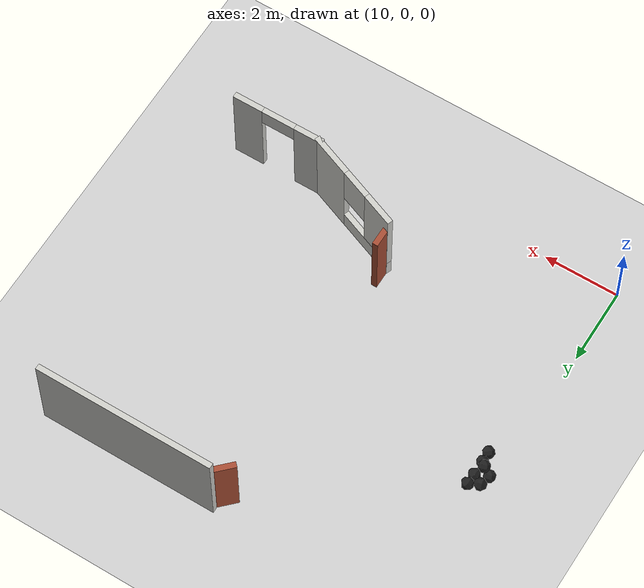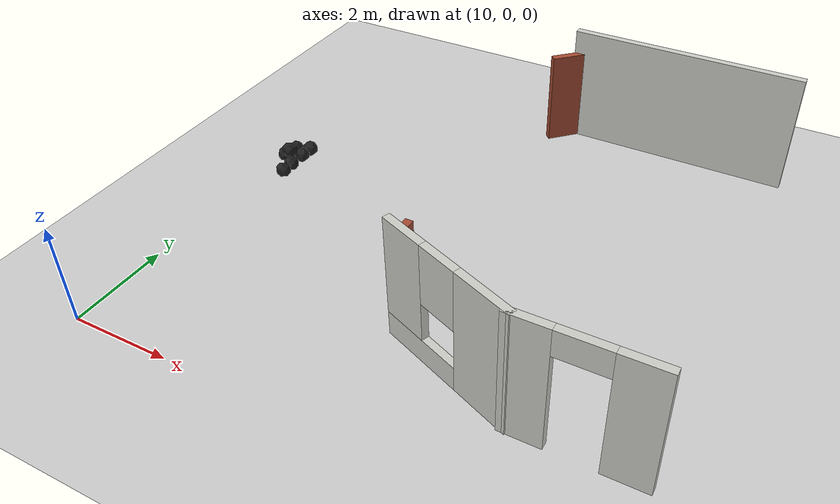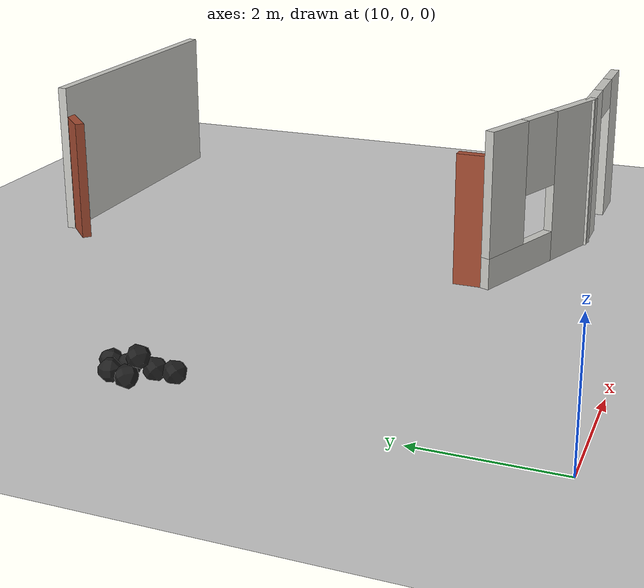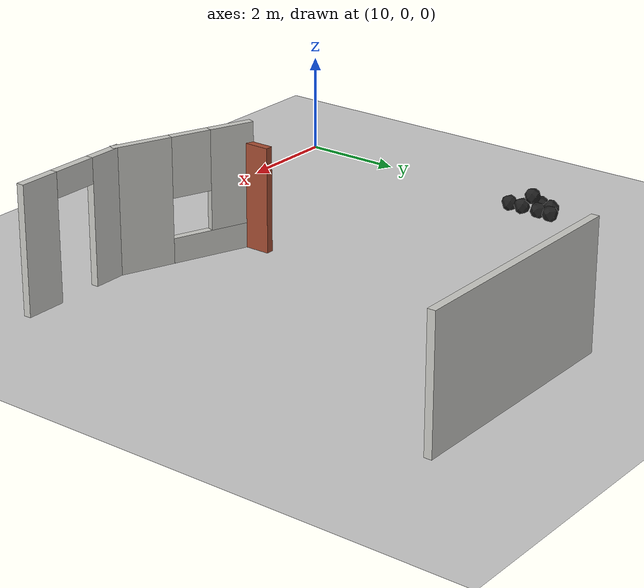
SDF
<sdf version="1.7">
 <world name="default">
  <model name="ground_plane">
   <static>1</static>
   <link name="link">
    <collision name="collision">
     <geometry><plane><normal>0 0 1</normal><size>100 100</size></plane></geometry>
     <surface><friction><ode><mu>100</mu><mu2>50</mu2></ode></friction></surface>
    </collision>
    <visual name="visual">
     <cast_shadows>0</cast_shadows>
     <geometry><plane><normal>0 0 1</normal><size>100 100</size></plane></geometry>
     <material>
      <script><uri>file://media/materials/scripts/gazebo.material</uri><name>Gazebo/Grey</name></script>
     </material>
    </visual>
   </link>
  </model>
  <model name="haoduomiantiaa_37">
   <link name="link_0">
    <inertial>
     <mass>0.2</mass>
     <inertia>
      <ixx>0.166667</ixx>
      <ixy>0</ixy>
      <ixz>0</ixz>
      <iyy>0.166667</iyy>
      <iyz>0</iyz>
      <izz>0.166667</izz>
     </inertia>
    </inertial>
    <visual name="visual">
     <geometry>
      <mesh>
       <uri>/home/lihaoyang/catkin_ws/src/pudong_gazebo/world/stl/haoduomianti.stl</uri>
       <scale>1 1 1</scale>
      </mesh>
     </geometry>
     <material>
      <lighting>1</lighting>
      <script><uri>file://media/materials/scripts/gazebo.material</uri><name>Gazebo/Black</name></script>
      <shader type="pixel"><normal_map>__default__</normal_map></shader>
      <ambient>0.3 0.3 0.3 1</ambient>
      <diffuse>0.7 0.7 0.7 1</diffuse>
      <specular>0.01 0.01 0.01 1</specular>
      <emissive>0 0 0 1</emissive>
     </material>
    </visual>
    <collision name="collision">
     <geometry>
      <mesh>
       <uri>/home/lihaoyang/catkin_ws/src/pudong_gazebo/world/stl/haoduomianti.stl</uri>
       <scale>1 1 1</scale>
      </mesh>
     </geometry>
     <surface>
      <friction>
       <ode><mu>1</mu><mu2>1</mu2><fdir1>0 0 0</fdir1><slip1>0</slip1><slip2>0</slip2></ode>
       <torsional>
        <coefficient>1</coefficient>
        <patch_radius>0</patch_radius>
        <surface_radius>0</surface_radius>
        <use_patch_radius>1</use_patch_radius>
        <ode><slip>0</slip></ode>
       </torsional>
      </friction>
      <bounce><restitution_coefficient>0</restitution_coefficient><threshold>1e+06</threshold></bounce>
      <contact>
       <collide_without_contact>0</collide_without_contact>
       <collide_without_contact_bitmask>1</collide_without_contact_bitmask>
       <collide_bitmask>1</collide_bitmask>
       <ode>
        <soft_cfm>0</soft_cfm>
        <soft_erp>0.2</soft_erp>
        <kp>1e+13</kp>
        <kd>1</kd>
        <max_vel>0.01</max_vel>
        <min_depth>0</min_depth>
       </ode>
       <bullet>
        <split_impulse>1</split_impulse>
        <split_impulse_penetration_threshold>-0.01</split_impulse_penetration_threshold>
        <soft_cfm>0</soft_cfm>
        <soft_erp>0.2</soft_erp>
        <kp>1e+13</kp>
        <kd>1</kd>
       </bullet>
      </contact>
     </surface>
    </collision>
   </link>
   <static>0</static>
   <pose>10.3598 6.24938 -0.003676 1.19196 -1.54256 0.613856</pose>
  </model>
  <model name="haoduomiantiaa_64">
   <link name="link_0">
    <inertial>
     <mass>0.2</mass>
     <inertia>
      <ixx>0.166667</ixx>
      <ixy>0</ixy>
      <ixz>0</ixz>
      <iyy>0.166667</iyy>
      <iyz>0</iyz>
      <izz>0.166667</izz>
     </inertia>
    </inertial>
    <visual name="visual">
     <geometry>
      <mesh>
       <uri>/home/lihaoyang/catkin_ws/src/pudong_gazebo/world/stl/haoduomianti.stl</uri>
       <scale>1 1 1</scale>
      </mesh>
     </geometry>
     <material>
      <lighting>1</lighting>
      <script><uri>file://media/materials/scripts/gazebo.material</uri><name>Gazebo/Black</name></script>
      <shader type="pixel"><normal_map>__default__</normal_map></shader>
      <ambient>0.3 0.3 0.3 1</ambient>
      <diffuse>0.7 0.7 0.7 1</diffuse>
      <specular>0.01 0.01 0.01 1</specular>
      <emissive>0 0 0 1</emissive>
     </material>
    </visual>
    <collision name="collision">
     <geometry>
      <mesh>
       <uri>/home/lihaoyang/catkin_ws/src/pudong_gazebo/world/stl/haoduomianti.stl</uri>
       <scale>1 1 1</scale>
      </mesh>
     </geometry>
     <surface>
      <friction>
       <ode><mu>1</mu><mu2>1</mu2><fdir1>0 0 0</fdir1><slip1>0</slip1><slip2>0</slip2></ode>
       <torsional>
        <coefficient>1</coefficient>
        <patch_radius>0</patch_radius>
        <surface_radius>0</surface_radius>
        <use_patch_radius>1</use_patch_radius>
        <ode><slip>0</slip></ode>
       </torsional>
      </friction>
      <bounce><restitution_coefficient>0</restitution_coefficient><threshold>1e+06</threshold></bounce>
      <contact>
       <collide_without_contact>0</collide_without_contact>
       <collide_without_contact_bitmask>1</collide_without_contact_bitmask>
       <collide_bitmask>1</collide_bitmask>
       <ode>
        <soft_cfm>0</soft_cfm>
        <soft_erp>0.2</soft_erp>
        <kp>1e+13</kp>
        <kd>1</kd>
        <max_vel>0.01</max_vel>
        <min_depth>0</min_depth>
       </ode>
       <bullet>
        <split_impulse>1</split_impulse>
        <split_impulse_penetration_threshold>-0.01</split_impulse_penetration_threshold>
        <soft_cfm>0</soft_cfm>
        <soft_erp>0.2</soft_erp>
        <kp>1e+13</kp>
        <kd>1</kd>
       </bullet>
      </contact>
     </surface>
    </collision>
   </link>
   <static>0</static>
   <pose>10.5009 5.92885 -0.115308 0.780623 -0.617791 2.08092</pose>
  </model>
  <model name="haoduomiantiaa_67">
   <link name="link_0">
    <inertial>
     <mass>0.2</mass>
     <inertia>
      <ixx>0.166667</ixx>
      <ixy>0</ixy>
      <ixz>0</ixz>
      <iyy>0.166667</iyy>
      <iyz>0</iyz>
      <izz>0.166667</izz>
     </inertia>
    </inertial>
    <visual name="visual">
     <geometry>
      <mesh>
       <uri>/home/lihaoyang/catkin_ws/src/pudong_gazebo/world/stl/haoduomianti.stl</uri>
       <scale>1 1 1</scale>
      </mesh>
     </geometry>
     <material>
      <lighting>1</lighting>
      <script><uri>file://media/materials/scripts/gazebo.material</uri><name>Gazebo/Black</name></script>
      <shader type="pixel"><normal_map>__default__</normal_map></shader>
      <ambient>0.3 0.3 0.3 1</ambient>
      <diffuse>0.7 0.7 0.7 1</diffuse>
      <specular>0.01 0.01 0.01 1</specular>
      <emissive>0 0 0 1</emissive>
     </material>
    </visual>
    <collision name="collision">
     <geometry>
      <mesh>
       <uri>/home/lihaoyang/catkin_ws/src/pudong_gazebo/world/stl/haoduomianti.stl</uri>
       <scale>1 1 1</scale>
      </mesh>
     </geometry>
     <surface>
      <friction>
       <ode><mu>1</mu><mu2>1</mu2><fdir1>0 0 0</fdir1><slip1>0</slip1><slip2>0</slip2></ode>
       <torsional>
        <coefficient>1</coefficient>
        <patch_radius>0</patch_radius>
        <surface_radius>0</surface_radius>
        <use_patch_radius>1</use_patch_radius>
        <ode><slip>0</slip></ode>
       </torsional>
      </friction>
      <bounce><restitution_coefficient>0</restitution_coefficient><threshold>1e+06</threshold></bounce>
      <contact>
       <collide_without_contact>0</collide_without_contact>
       <collide_without_contact_bitmask>1</collide_without_contact_bitmask>
       <collide_bitmask>1</collide_bitmask>
       <ode>
        <soft_cfm>0</soft_cfm>
        <soft_erp>0.2</soft_erp>
        <kp>1e+13</kp>
        <kd>1</kd>
        <max_vel>0.01</max_vel>
        <min_depth>0</min_depth>
       </ode>
       <bullet>
        <split_impulse>1</split_impulse>
        <split_impulse_penetration_threshold>-0.01</split_impulse_penetration_threshold>
        <soft_cfm>0</soft_cfm>
        <soft_erp>0.2</soft_erp>
        <kp>1e+13</kp>
        <kd>1</kd>
       </bullet>
      </contact>
     </surface>
    </collision>
   </link>
   <static>0</static>
   <pose>10.174 5.78335 -0.115464 0.785509 -0.615489 -1.30792</pose>
  </model>
  <model name="haoduomiantiaa_71">
   <link name="link_0">
    <inertial>
     <mass>0.2</mass>
     <inertia>
      <ixx>0.166667</ixx>
      <ixy>0</ixy>
      <ixz>0</ixz>
      <iyy>0.166667</iyy>
      <iyz>0</iyz>
      <izz>0.166667</izz>
     </inertia>
    </inertial>
    <visual name="visual">
     <geometry>
      <mesh>
       <uri>/home/lihaoyang/catkin_ws/src/pudong_gazebo/world/stl/haoduomianti.stl</uri>
       <scale>1 1 1</scale>
      </mesh>
     </geometry>
     <material>
      <lighting>1</lighting>
      <script><uri>file://media/materials/scripts/gazebo.material</uri><name>Gazebo/Black</name></script>
      <shader type="pixel"><normal_map>__default__</normal_map></shader>
      <ambient>0.3 0.3 0.3 1</ambient>
      <diffuse>0.7 0.7 0.7 1</diffuse>
      <specular>0.01 0.01 0.01 1</specular>
      <emissive>0 0 0 1</emissive>
     </material>
    </visual>
    <collision name="collision">
     <geometry>
      <mesh>
       <uri>/home/lihaoyang/catkin_ws/src/pudong_gazebo/world/stl/haoduomianti.stl</uri>
       <scale>1 1 1</scale>
      </mesh>
     </geometry>
     <surface>
      <friction>
       <ode><mu>1</mu><mu2>1</mu2><fdir1>0 0 0</fdir1><slip1>0</slip1><slip2>0</slip2></ode>
       <torsional>
        <coefficient>1</coefficient>
        <patch_radius>0</patch_radius>
        <surface_radius>0</surface_radius>
        <use_patch_radius>1</use_patch_radius>
        <ode><slip>0</slip></ode>
       </torsional>
      </friction>
      <bounce><restitution_coefficient>0</restitution_coefficient><threshold>1e+06</threshold></bounce>
      <contact>
       <collide_without_contact>0</collide_without_contact>
       <collide_without_contact_bitmask>1</collide_without_contact_bitmask>
       <collide_bitmask>1</collide_bitmask>
       <ode>
        <soft_cfm>0</soft_cfm>
        <soft_erp>0.2</soft_erp>
        <kp>1e+13</kp>
        <kd>1</kd>
        <max_vel>0.01</max_vel>
        <min_depth>0</min_depth>
       </ode>
       <bullet>
        <split_impulse>1</split_impulse>
        <split_impulse_penetration_threshold>-0.01</split_impulse_penetration_threshold>
        <soft_cfm>0</soft_cfm>
        <soft_erp>0.2</soft_erp>
        <kp>1e+13</kp>
        <kd>1</kd>
       </bullet>
      </contact>
     </surface>
    </collision>
   </link>
   <static>0</static>
   <pose>10.4979 5.55039 -0.115492 0.785395 -0.615483 1.17926</pose>
  </model>
  <model name="haoduomiantiaa_77">
   <link name="link_0">
    <inertial>
     <mass>0.2</mass>
     <inertia>
      <ixx>0.166667</ixx>
      <ixy>0</ixy>
      <ixz>0</ixz>
      <iyy>0.166667</iyy>
      <iyz>0</iyz>
      <izz>0.166667</izz>
     </inertia>
    </inertial>
    <visual name="visual">
     <geometry>
      <mesh>
       <uri>/home/lihaoyang/catkin_ws/src/pudong_gazebo/world/stl/haoduomianti.stl</uri>
       <scale>1 1 1</scale>
      </mesh>
     </geometry>
     <material>
      <lighting>1</lighting>
      <script><uri>file://media/materials/scripts/gazebo.material</uri><name>Gazebo/Black</name></script>
      <shader type="pixel"><normal_map>__default__</normal_map></shader>
      <ambient>0.3 0.3 0.3 1</ambient>
      <diffuse>0.7 0.7 0.7 1</diffuse>
      <specular>0.01 0.01 0.01 1</specular>
      <emissive>0 0 0 1</emissive>
     </material>
    </visual>
    <collision name="collision">
     <geometry>
      <mesh>
       <uri>/home/lihaoyang/catkin_ws/src/pudong_gazebo/world/stl/haoduomianti.stl</uri>
       <scale>1 1 1</scale>
      </mesh>
     </geometry>
     <surface>
      <friction>
       <ode><mu>1</mu><mu2>1</mu2><fdir1>0 0 0</fdir1><slip1>0</slip1><slip2>0</slip2></ode>
       <torsional>
        <coefficient>1</coefficient>
        <patch_radius>0</patch_radius>
        <surface_radius>0</surface_radius>
        <use_patch_radius>1</use_patch_radius>
        <ode><slip>0</slip></ode>
       </torsional>
      </friction>
      <bounce><restitution_coefficient>0</restitution_coefficient><threshold>1e+06</threshold></bounce>
      <contact>
       <collide_without_contact>0</collide_without_contact>
       <collide_without_contact_bitmask>1</collide_without_contact_bitmask>
       <collide_bitmask>1</collide_bitmask>
       <ode>
        <soft_cfm>0</soft_cfm>
        <soft_erp>0.2</soft_erp>
        <kp>1e+13</kp>
        <kd>1</kd>
        <max_vel>0.01</max_vel>
        <min_depth>0</min_depth>
       </ode>
       <bullet>
        <split_impulse>1</split_impulse>
        <split_impulse_penetration_threshold>-0.01</split_impulse_penetration_threshold>
        <soft_cfm>0</soft_cfm>
        <soft_erp>0.2</soft_erp>
        <kp>1e+13</kp>
        <kd>1</kd>
       </bullet>
      </contact>
     </surface>
    </collision>
   </link>
   <static>0</static>
   <pose>10.5195 6.21236 -0.115409 0.785449 -0.615548 2.10413</pose>
  </model>
  <model name="haoduomiantiaa_82">
   <link name="link_0">
    <inertial>
     <mass>0.2</mass>
     <inertia>
      <ixx>0.166667</ixx>
      <ixy>0</ixy>
      <ixz>0</ixz>
      <iyy>0.166667</iyy>
      <iyz>0</iyz>
      <izz>0.166667</izz>
     </inertia>
    </inertial>
    <visual name="visual">
     <geometry>
      <mesh>
       <uri>/home/lihaoyang/catkin_ws/src/pudong_gazebo/world/stl/haoduomianti.stl</uri>
       <scale>1 1 1</scale>
      </mesh>
     </geometry>
     <material>
      <lighting>1</lighting>
      <script><uri>file://media/materials/scripts/gazebo.material</uri><name>Gazebo/Black</name></script>
      <shader type="pixel"><normal_map>__default__</normal_map></shader>
      <ambient>0.3 0.3 0.3 1</ambient>
      <diffuse>0.7 0.7 0.7 1</diffuse>
      <specular>0.01 0.01 0.01 1</specular>
      <emissive>0 0 0 1</emissive>
     </material>
    </visual>
    <collision name="collision">
     <geometry>
      <mesh>
       <uri>/home/lihaoyang/catkin_ws/src/pudong_gazebo/world/stl/haoduomianti.stl</uri>
       <scale>1 1 1</scale>
      </mesh>
     </geometry>
     <surface>
      <friction>
       <ode><mu>1</mu><mu2>1</mu2><fdir1>0 0 0</fdir1><slip1>0</slip1><slip2>0</slip2></ode>
       <torsional>
        <coefficient>1</coefficient>
        <patch_radius>0</patch_radius>
        <surface_radius>0</surface_radius>
        <use_patch_radius>1</use_patch_radius>
        <ode><slip>0</slip></ode>
       </torsional>
      </friction>
      <bounce><restitution_coefficient>0</restitution_coefficient><threshold>1e+06</threshold></bounce>
      <contact>
       <collide_without_contact>0</collide_without_contact>
       <collide_without_contact_bitmask>1</collide_without_contact_bitmask>
       <collide_bitmask>1</collide_bitmask>
       <ode>
        <soft_cfm>0</soft_cfm>
        <soft_erp>0.2</soft_erp>
        <kp>1e+13</kp>
        <kd>1</kd>
        <max_vel>0.01</max_vel>
        <min_depth>0</min_depth>
       </ode>
       <bullet>
        <split_impulse>1</split_impulse>
        <split_impulse_penetration_threshold>-0.01</split_impulse_penetration_threshold>
        <soft_cfm>0</soft_cfm>
        <soft_erp>0.2</soft_erp>
        <kp>1e+13</kp>
        <kd>1</kd>
       </bullet>
      </contact>
     </surface>
    </collision>
   </link>
   <static>0</static>
   <pose>10.3736 5.71908 0.092671 0.779768 -0.658453 0.943269</pose>
  </model>
  <model name="haoduomiantiaa_134">
   <link name="link_0">
    <inertial>
     <mass>0.2</mass>
     <inertia>
      <ixx>0.166667</ixx>
      <ixy>0</ixy>
      <ixz>0</ixz>
      <iyy>0.166667</iyy>
      <iyz>0</iyz>
      <izz>0.166667</izz>
     </inertia>
    </inertial>
    <visual name="visual">
     <geometry>
      <mesh>
       <uri>/home/lihaoyang/catkin_ws/src/pudong_gazebo/world/stl/haoduomianti.stl</uri>
       <scale>1 1 1</scale>
      </mesh>
     </geometry>
     <material>
      <lighting>1</lighting>
      <script><uri>file://media/materials/scripts/gazebo.material</uri><name>Gazebo/Black</name></script>
      <shader type="pixel"><normal_map>__default__</normal_map></shader>
      <ambient>0.3 0.3 0.3 1</ambient>
      <diffuse>0.7 0.7 0.7 1</diffuse>
      <specular>0.01 0.01 0.01 1</specular>
      <emissive>0 0 0 1</emissive>
     </material>
    </visual>
    <collision name="collision">
     <geometry>
      <mesh>
       <uri>/home/lihaoyang/catkin_ws/src/pudong_gazebo/world/stl/haoduomianti.stl</uri>
       <scale>1 1 1</scale>
      </mesh>
     </geometry>
     <surface>
      <friction>
       <ode><mu>1</mu><mu2>1</mu2><fdir1>0 0 0</fdir1><slip1>0</slip1><slip2>0</slip2></ode>
       <torsional>
        <coefficient>1</coefficient>
        <patch_radius>0</patch_radius>
        <surface_radius>0</surface_radius>
        <use_patch_radius>1</use_patch_radius>
        <ode><slip>0</slip></ode>
       </torsional>
      </friction>
      <bounce><restitution_coefficient>0</restitution_coefficient><threshold>1e+06</threshold></bounce>
      <contact>
       <collide_without_contact>0</collide_without_contact>
       <collide_without_contact_bitmask>1</collide_without_contact_bitmask>
       <collide_bitmask>1</collide_bitmask>
       <ode>
        <soft_cfm>0</soft_cfm>
        <soft_erp>0.2</soft_erp>
        <kp>1e+13</kp>
        <kd>1</kd>
        <max_vel>0.01</max_vel>
        <min_depth>0</min_depth>
       </ode>
       <bullet>
        <split_impulse>1</split_impulse>
        <split_impulse_penetration_threshold>-0.01</split_impulse_penetration_threshold>
        <soft_cfm>0</soft_cfm>
        <soft_erp>0.2</soft_erp>
        <kp>1e+13</kp>
        <kd>1</kd>
       </bullet>
      </contact>
     </surface>
    </collision>
   </link>
   <static>0</static>
   <pose>10.5017 5.2656 -0.115483 0.785493 -0.61552 1.17926</pose>
  </model>
  <model name="house">
   <link name="Wall_10">
    <pose>6.351 -3.13846 0 0 -0 2.76762</pose>
    <visual name="Wall_10_Visual_2">
     <pose>0.98795 0 1.5 0 -0 0</pose>
     <geometry><box><size>0.905886 0.15 2</size></box></geometry>
     <material>
      <script><uri>file://media/materials/scripts/gazebo.material</uri><name>Gazebo/CeilingTiled</name></script>
      <ambient>1 1 1 1</ambient>
      <shader type="pixel"/>
     </material>
     <meta><layer>0</layer></meta>
    </visual>
    <visual name="Wall_10_Visual_3">
     <pose>0.135006 0 1.9 0 -0 0</pose>
     <geometry><box><size>0.8 0.15 1.2</size></box></geometry>
     <material>
      <script><uri>file://media/materials/scripts/gazebo.material</uri><name>Gazebo/CeilingTiled</name></script>
      <ambient>1 1 1 1</ambient>
      <shader type="pixel"/>
     </material>
     <meta><layer>0</layer></meta>
    </visual>
    <visual name="Wall_10_Visual_1">
     <pose>0.58795 0 0.25 0 -0 0</pose>
     <geometry><box><size>1.70589 0.15 0.5</size></box></geometry>
     <material>
      <script><uri>file://media/materials/scripts/gazebo.material</uri><name>Gazebo/CeilingTiled</name></script>
      <ambient>1 1 1 1</ambient>
      <shader type="pixel"/>
     </material>
     <meta><layer>0</layer></meta>
    </visual>
    <visual name="Wall_10_Visual_0">
     <pose>-0.852943 0 1.25 0 -0 0</pose>
     <geometry><box><size>1.1759 0.15 2.5</size></box></geometry>
     <material>
      <script><uri>file://media/materials/scripts/gazebo.material</uri><name>Gazebo/CeilingTiled</name></script>
      <ambient>1 1 1 1</ambient>
      <shader type="pixel"/>
     </material>
     <meta><layer>0</layer></meta>
    </visual>
    <collision name="Wall_10_Collision_0">
     <pose>-0.852943 0 1.25 0 -0 0</pose>
     <geometry><box><size>1.1759 0.15 2.5</size></box></geometry>
     <surface>
      <friction>
       <ode><mu>1</mu><mu2>1</mu2><fdir1>0 0 0</fdir1><slip1>0</slip1><slip2>0</slip2></ode>
       <torsional>
        <coefficient>1</coefficient>
        <patch_radius>0</patch_radius>
        <surface_radius>0</surface_radius>
        <use_patch_radius>1</use_patch_radius>
        <ode><slip>0</slip></ode>
       </torsional>
      </friction>
      <bounce><restitution_coefficient>0</restitution_coefficient><threshold>1e+06</threshold></bounce>
      <contact>
       <collide_without_contact>0</collide_without_contact>
       <collide_without_contact_bitmask>1</collide_without_contact_bitmask>
       <collide_bitmask>1</collide_bitmask>
       <ode>
        <soft_cfm>0</soft_cfm>
        <soft_erp>0.2</soft_erp>
        <kp>1e+13</kp>
        <kd>1</kd>
        <max_vel>0.01</max_vel>
        <min_depth>0</min_depth>
       </ode>
       <bullet>
        <split_impulse>1</split_impulse>
        <split_impulse_penetration_threshold>-0.01</split_impulse_penetration_threshold>
        <soft_cfm>0</soft_cfm>
        <soft_erp>0.2</soft_erp>
        <kp>1e+13</kp>
        <kd>1</kd>
       </bullet>
      </contact>
     </surface>
    </collision>
    <collision name="Wall_10_Collision_1">
     <pose>0.58795 0 0.25 0 -0 0</pose>
     <geometry><box><size>1.70589 0.15 0.5</size></box></geometry>
     <surface>
      <friction>
       <ode><mu>1</mu><mu2>1</mu2><fdir1>0 0 0</fdir1><slip1>0</slip1><slip2>0</slip2></ode>
       <torsional>
        <coefficient>1</coefficient>
        <patch_radius>0</patch_radius>
        <surface_radius>0</surface_radius>
        <use_patch_radius>1</use_patch_radius>
        <ode><slip>0</slip></ode>
       </torsional>
      </friction>
      <bounce><restitution_coefficient>0</restitution_coefficient><threshold>1e+06</threshold></bounce>
      <contact>
       <collide_without_contact>0</collide_without_contact>
       <collide_without_contact_bitmask>1</collide_without_contact_bitmask>
       <collide_bitmask>1</collide_bitmask>
       <ode>
        <soft_cfm>0</soft_cfm>
        <soft_erp>0.2</soft_erp>
        <kp>1e+13</kp>
        <kd>1</kd>
        <max_vel>0.01</max_vel>
        <min_depth>0</min_depth>
       </ode>
       <bullet>
        <split_impulse>1</split_impulse>
        <split_impulse_penetration_threshold>-0.01</split_impulse_penetration_threshold>
        <soft_cfm>0</soft_cfm>
        <soft_erp>0.2</soft_erp>
        <kp>1e+13</kp>
        <kd>1</kd>
       </bullet>
      </contact>
     </surface>
    </collision>
    <collision name="Wall_10_Collision_2">
     <pose>0.98795 0 1.5 0 -0 0</pose>
     <geometry><box><size>0.905886 0.15 2</size></box></geometry>
     <surface>
      <friction>
       <ode><mu>1</mu><mu2>1</mu2><fdir1>0 0 0</fdir1><slip1>0</slip1><slip2>0</slip2></ode>
       <torsional>
        <coefficient>1</coefficient>
        <patch_radius>0</patch_radius>
        <surface_radius>0</surface_radius>
        <use_patch_radius>1</use_patch_radius>
        <ode><slip>0</slip></ode>
       </torsional>
      </friction>
      <bounce><restitution_coefficient>0</restitution_coefficient><threshold>1e+06</threshold></bounce>
      <contact>
       <collide_without_contact>0</collide_without_contact>
       <collide_without_contact_bitmask>1</collide_without_contact_bitmask>
       <collide_bitmask>1</collide_bitmask>
       <ode>
        <soft_cfm>0</soft_cfm>
        <soft_erp>0.2</soft_erp>
        <kp>1e+13</kp>
        <kd>1</kd>
        <max_vel>0.01</max_vel>
        <min_depth>0</min_depth>
       </ode>
       <bullet>
        <split_impulse>1</split_impulse>
        <split_impulse_penetration_threshold>-0.01</split_impulse_penetration_threshold>
        <soft_cfm>0</soft_cfm>
        <soft_erp>0.2</soft_erp>
        <kp>1e+13</kp>
        <kd>1</kd>
       </bullet>
      </contact>
     </surface>
    </collision>
    <collision name="Wall_10_Collision_3">
     <pose>0.135006 0 1.9 0 -0 0</pose>
     <geometry><box><size>0.8 0.15 1.2</size></box></geometry>
     <surface>
      <friction>
       <ode><mu>1</mu><mu2>1</mu2><fdir1>0 0 0</fdir1><slip1>0</slip1><slip2>0</slip2></ode>
       <torsional>
        <coefficient>1</coefficient>
        <patch_radius>0</patch_radius>
        <surface_radius>0</surface_radius>
        <use_patch_radius>1</use_patch_radius>
        <ode><slip>0</slip></ode>
       </torsional>
      </friction>
      <bounce><restitution_coefficient>0</restitution_coefficient><threshold>1e+06</threshold></bounce>
      <contact>
       <collide_without_contact>0</collide_without_contact>
       <collide_without_contact_bitmask>1</collide_without_contact_bitmask>
       <collide_bitmask>1</collide_bitmask>
       <ode>
        <soft_cfm>0</soft_cfm>
        <soft_erp>0.2</soft_erp>
        <kp>1e+13</kp>
        <kd>1</kd>
        <max_vel>0.01</max_vel>
        <min_depth>0</min_depth>
       </ode>
       <bullet>
        <split_impulse>1</split_impulse>
        <split_impulse_penetration_threshold>-0.01</split_impulse_penetration_threshold>
        <soft_cfm>0</soft_cfm>
        <soft_erp>0.2</soft_erp>
        <kp>1e+13</kp>
        <kd>1</kd>
       </bullet>
      </contact>
     </surface>
    </collision>
   </link>
   <link name="Wall_11">
    <pose>5.1147 -2.35573 0 0 -0 1.5708</pose>
    <inertial>
     <inertia><ixx>0</ixx><ixy>0</ixy><ixz>0</ixz><iyy>0</iyy><iyz>0</iyz><izz>0</izz></inertia>
     <mass>0</mass>
    </inertial>
    <visual name="Wall_11_Visual">
     <pose>0 0 1.05 0 -0 0</pose>
     <geometry><box><size>0.506266 0.15 2.1</size></box></geometry>
     <material>
      <script><uri>file://media/materials/scripts/gazebo.material</uri><name>Gazebo/Bricks</name></script>
      <ambient>1 1 1 1</ambient>
      <shader type="pixel"/>
     </material>
     <meta><layer>0</layer></meta>
    </visual>
    <collision name="Wall_11_Collision">
     <pose>0 0 1.05 0 -0 0</pose>
     <geometry><box><size>0.506266 0.15 2.1</size></box></geometry>
     <surface>
      <friction>
       <ode><mu>1</mu><mu2>1</mu2><fdir1>0 0 0</fdir1><slip1>0</slip1><slip2>0</slip2></ode>
       <torsional>
        <coefficient>1</coefficient>
        <patch_radius>0</patch_radius>
        <surface_radius>0</surface_radius>
        <use_patch_radius>1</use_patch_radius>
        <ode><slip>0</slip></ode>
       </torsional>
      </friction>
      <bounce><restitution_coefficient>0</restitution_coefficient><threshold>1e+06</threshold></bounce>
      <contact>
       <collide_without_contact>0</collide_without_contact>
       <collide_without_contact_bitmask>1</collide_without_contact_bitmask>
       <collide_bitmask>1</collide_bitmask>
       <ode>
        <soft_cfm>0</soft_cfm>
        <soft_erp>0.2</soft_erp>
        <kp>1e+13</kp>
        <kd>1</kd>
        <max_vel>0.01</max_vel>
        <min_depth>0</min_depth>
       </ode>
       <bullet>
        <split_impulse>1</split_impulse>
        <split_impulse_penetration_threshold>-0.01</split_impulse_penetration_threshold>
        <soft_cfm>0</soft_cfm>
        <soft_erp>0.2</soft_erp>
        <kp>1e+13</kp>
        <kd>1</kd>
       </bullet>
      </contact>
     </surface>
    </collision>
   </link>
   <link name="Wall_15">
    <pose>5.117 4.61078 0 0 -0 0.786576</pose>
    <visual name="Wall_15_Visual">
     <pose>0 0 1 0 -0 0</pose>
     <geometry><box><size>0.75 0.15 2</size></box></geometry>
     <material>
      <script><uri>file://media/materials/scripts/gazebo.material</uri><name>Gazebo/Bricks</name></script>
      <ambient>1 1 1 1</ambient>
      <shader type="pixel"/>
     </material>
     <meta><layer>0</layer></meta>
    </visual>
    <collision name="Wall_15_Collision">
     <pose>0 0 1 0 -0 0</pose>
     <geometry><box><size>0.75 0.15 2</size></box></geometry>
     <surface>
      <friction>
       <ode><mu>1</mu><mu2>1</mu2><fdir1>0 0 0</fdir1><slip1>0</slip1><slip2>0</slip2></ode>
       <torsional>
        <coefficient>1</coefficient>
        <patch_radius>0</patch_radius>
        <surface_radius>0</surface_radius>
        <use_patch_radius>1</use_patch_radius>
        <ode><slip>0</slip></ode>
       </torsional>
      </friction>
      <bounce><restitution_coefficient>0</restitution_coefficient><threshold>1e+06</threshold></bounce>
      <contact>
       <collide_without_contact>0</collide_without_contact>
       <collide_without_contact_bitmask>1</collide_without_contact_bitmask>
       <collide_bitmask>1</collide_bitmask>
       <ode>
        <soft_cfm>0</soft_cfm>
        <soft_erp>0.2</soft_erp>
        <kp>1e+13</kp>
        <kd>1</kd>
        <max_vel>0.01</max_vel>
        <min_depth>0</min_depth>
       </ode>
       <bullet>
        <split_impulse>1</split_impulse>
        <split_impulse_penetration_threshold>-0.01</split_impulse_penetration_threshold>
        <soft_cfm>0</soft_cfm>
        <soft_erp>0.2</soft_erp>
        <kp>1e+13</kp>
        <kd>1</kd>
       </bullet>
      </contact>
     </surface>
    </collision>
   </link>
   <link name="Wall_17">
    <pose>7.55371 4.86332 0 0 0 -8.8e-05</pose>
    <visual name="Wall_17_Visual">
     <pose>0 0 1.25 0 -0 0</pose>
     <geometry><box><size>4.75 0.15 2.5</size></box></geometry>
     <material>
      <script><uri>file://media/materials/scripts/gazebo.material</uri><name>Gazebo/CeilingTiled</name></script>
      <ambient>1 1 1 1</ambient>
      <shader type="pixel"/>
     </material>
     <meta><layer>0</layer></meta>
    </visual>
    <collision name="Wall_17_Collision">
     <pose>0 0 1.25 0 -0 0</pose>
     <geometry><box><size>4.75 0.15 2.5</size></box></geometry>
     <surface>
      <friction>
       <ode><mu>1</mu><mu2>1</mu2><fdir1>0 0 0</fdir1><slip1>0</slip1><slip2>0</slip2></ode>
       <torsional>
        <coefficient>1</coefficient>
        <patch_radius>0</patch_radius>
        <surface_radius>0</surface_radius>
        <use_patch_radius>1</use_patch_radius>
        <ode><slip>0</slip></ode>
       </torsional>
      </friction>
      <bounce><restitution_coefficient>0</restitution_coefficient><threshold>1e+06</threshold></bounce>
      <contact>
       <collide_without_contact>0</collide_without_contact>
       <collide_without_contact_bitmask>1</collide_without_contact_bitmask>
       <collide_bitmask>1</collide_bitmask>
       <ode>
        <soft_cfm>0</soft_cfm>
        <soft_erp>0.2</soft_erp>
        <kp>1e+13</kp>
        <kd>1</kd>
        <max_vel>0.01</max_vel>
        <min_depth>0</min_depth>
       </ode>
       <bullet>
        <split_impulse>1</split_impulse>
        <split_impulse_penetration_threshold>-0.01</split_impulse_penetration_threshold>
        <soft_cfm>0</soft_cfm>
        <soft_erp>0.2</soft_erp>
        <kp>1e+13</kp>
        <kd>1</kd>
       </bullet>
      </contact>
     </surface>
    </collision>
   </link>
   <link name="Wall_7">
    <pose>8.75749 -3.63745 0 0 -0 0</pose>
    <visual name="Wall_7_Visual_1">
     <pose>0.842517 0 1.25 0 -0 0</pose>
     <geometry><box><size>0.814967 0.15 2.5</size></box></geometry>
     <material>
      <script><uri>file://media/materials/scripts/gazebo.material</uri><name>Gazebo/CeilingTiled</name></script>
      <ambient>1 1 1 1</ambient>
      <shader type="pixel"/>
     </material>
     <meta><layer>0</layer></meta>
    </visual>
    <visual name="Wall_7_Visual_0">
     <pose>-0.857483 0 1.25 0 -0 0</pose>
     <geometry><box><size>0.785033 0.15 2.5</size></box></geometry>
     <material>
      <script><uri>file://media/materials/scripts/gazebo.material</uri><name>Gazebo/CeilingTiled</name></script>
      <ambient>1 1 1 1</ambient>
      <shader type="pixel"/>
     </material>
     <meta><layer>0</layer></meta>
    </visual>
    <visual name="Wall_7_Visual_2">
     <pose>-0.014967 0 2.25 0 -0 0</pose>
     <geometry><box><size>0.9 0.15 0.5</size></box></geometry>
     <material>
      <script><uri>file://media/materials/scripts/gazebo.material</uri><name>Gazebo/CeilingTiled</name></script>
      <ambient>1 1 1 1</ambient>
      <shader type="pixel"/>
     </material>
     <meta><layer>0</layer></meta>
    </visual>
    <collision name="Wall_7_Collision_0">
     <pose>-0.857483 0 1.25 0 -0 0</pose>
     <geometry><box><size>0.785033 0.15 2.5</size></box></geometry>
     <surface>
      <friction>
       <ode><mu>1</mu><mu2>1</mu2><fdir1>0 0 0</fdir1><slip1>0</slip1><slip2>0</slip2></ode>
       <torsional>
        <coefficient>1</coefficient>
        <patch_radius>0</patch_radius>
        <surface_radius>0</surface_radius>
        <use_patch_radius>1</use_patch_radius>
        <ode><slip>0</slip></ode>
       </torsional>
      </friction>
      <bounce><restitution_coefficient>0</restitution_coefficient><threshold>1e+06</threshold></bounce>
      <contact>
       <collide_without_contact>0</collide_without_contact>
       <collide_without_contact_bitmask>1</collide_without_contact_bitmask>
       <collide_bitmask>1</collide_bitmask>
       <ode>
        <soft_cfm>0</soft_cfm>
        <soft_erp>0.2</soft_erp>
        <kp>1e+13</kp>
        <kd>1</kd>
        <max_vel>0.01</max_vel>
        <min_depth>0</min_depth>
       </ode>
       <bullet>
        <split_impulse>1</split_impulse>
        <split_impulse_penetration_threshold>-0.01</split_impulse_penetration_threshold>
        <soft_cfm>0</soft_cfm>
        <soft_erp>0.2</soft_erp>
        <kp>1e+13</kp>
        <kd>1</kd>
       </bullet>
      </contact>
     </surface>
    </collision>
    <collision name="Wall_7_Collision_1">
     <pose>0.842517 0 1.25 0 -0 0</pose>
     <geometry><box><size>0.814967 0.15 2.5</size></box></geometry>
     <surface>
      <friction>
       <ode><mu>1</mu><mu2>1</mu2><fdir1>0 0 0</fdir1><slip1>0</slip1><slip2>0</slip2></ode>
       <torsional>
        <coefficient>1</coefficient>
        <patch_radius>0</patch_radius>
        <surface_radius>0</surface_radius>
        <use_patch_radius>1</use_patch_radius>
        <ode><slip>0</slip></ode>
       </torsional>
      </friction>
      <bounce><restitution_coefficient>0</restitution_coefficient><threshold>1e+06</threshold></bounce>
      <contact>
       <collide_without_contact>0</collide_without_contact>
       <collide_without_contact_bitmask>1</collide_without_contact_bitmask>
       <collide_bitmask>1</collide_bitmask>
       <ode>
        <soft_cfm>0</soft_cfm>
        <soft_erp>0.2</soft_erp>
        <kp>1e+13</kp>
        <kd>1</kd>
        <max_vel>0.01</max_vel>
        <min_depth>0</min_depth>
       </ode>
       <bullet>
        <split_impulse>1</split_impulse>
        <split_impulse_penetration_threshold>-0.01</split_impulse_penetration_threshold>
        <soft_cfm>0</soft_cfm>
        <soft_erp>0.2</soft_erp>
        <kp>1e+13</kp>
        <kd>1</kd>
       </bullet>
      </contact>
     </surface>
    </collision>
    <collision name="Wall_7_Collision_2">
     <pose>-0.014967 0 2.25 0 -0 0</pose>
     <geometry><box><size>0.9 0.15 0.5</size></box></geometry>
     <surface>
      <friction>
       <ode><mu>1</mu><mu2>1</mu2><fdir1>0 0 0</fdir1><slip1>0</slip1><slip2>0</slip2></ode>
       <torsional>
        <coefficient>1</coefficient>
        <patch_radius>0</patch_radius>
        <surface_radius>0</surface_radius>
        <use_patch_radius>1</use_patch_radius>
        <ode><slip>0</slip></ode>
       </torsional>
      </friction>
      <bounce><restitution_coefficient>0</restitution_coefficient><threshold>1e+06</threshold></bounce>
      <contact>
       <collide_without_contact>0</collide_without_contact>
       <collide_without_contact_bitmask>1</collide_without_contact_bitmask>
       <collide_bitmask>1</collide_bitmask>
       <ode>
        <soft_cfm>0</soft_cfm>
        <soft_erp>0.2</soft_erp>
        <kp>1e+13</kp>
        <kd>1</kd>
        <max_vel>0.01</max_vel>
        <min_depth>0</min_depth>
       </ode>
       <bullet>
        <split_impulse>1</split_impulse>
        <split_impulse_penetration_threshold>-0.01</split_impulse_penetration_threshold>
        <soft_cfm>0</soft_cfm>
        <soft_erp>0.2</soft_erp>
        <kp>1e+13</kp>
        <kd>1</kd>
       </bullet>
      </contact>
     </surface>
    </collision>
   </link>
   <static>1</static>
   <pose>10.0075 4.96947 0 0 -0 0</pose>
  </model>
 </world>
</sdf>
